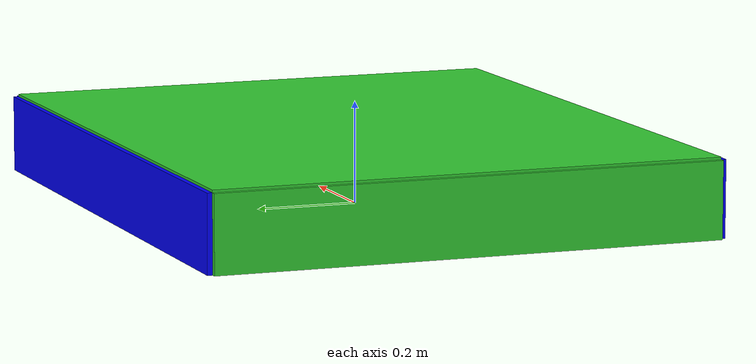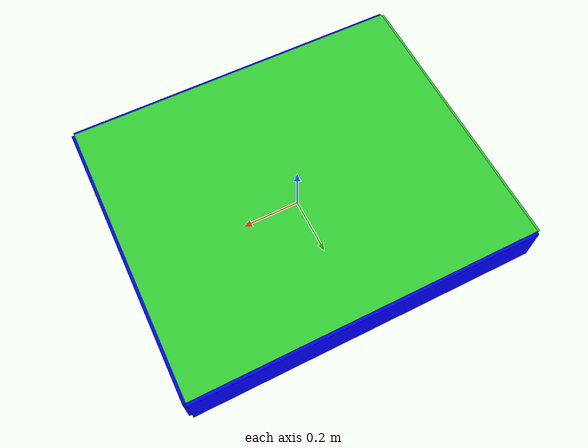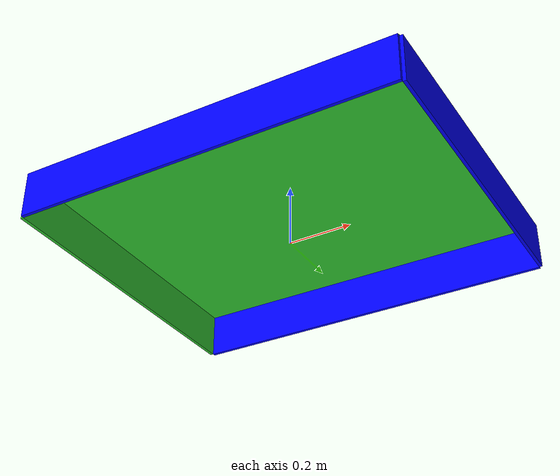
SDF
<?xml version="1.0"?>
<sdf version="1.6">
  <model name="pallet">
    <static>true</static>
    <link name="pallet_link">

      <!-- Top surface: 1200x1000mm (green) -->
      <visual name="top_surface">
        <pose>0 0 0.15 0 0 0</pose>
        <geometry>
          <box>
            <size>1.2 1.0 0.01</size>
          </box>
        </geometry>
        <material>
          <ambient>0.2 0.8 0.2 1</ambient>
          <diffuse>0.2 0.8 0.2 1</diffuse>
        </material>
      </visual>

      <!-- Front face (camera facing): 1200x150mm (blue) -->
      <!-- Located at Y = -0.5 (front side facing camera) -->
      <visual name="front_face">
        <pose>0 -0.505 0.075 0 0 0</pose>
        <geometry>
          <box>
            <size>1.2 0.01 0.15</size>
          </box>
        </geometry>
        <material>
          <ambient>0.0 0.0 1.0 1</ambient>
          <diffuse>0.0 0.0 1.0 1</diffuse>
        </material>
      </visual>

      <!-- Back face: 1200x150mm (BLUE - camera facing) -->
      <visual name="back_face">
        <pose>0 0.505 0.075 0 0 0</pose>
        <geometry>
          <box>
            <size>1.2 0.01 0.15</size>
          </box>
        </geometry>
        <material>
          <ambient>0.0 0.0 1.0 1</ambient>
          <diffuse>0.0 0.0 1.0 1</diffuse>
        </material>
      </visual>

      <!-- Left side face: 1000x150mm (green) -->
      <visual name="left_face">
        <pose>-0.605 0 0.075 0 0 0</pose>
        <geometry>
          <box>
            <size>0.01 1.0 0.15</size>
          </box>
        </geometry>
        <material>
          <ambient>0.2 0.8 0.2 1</ambient>
          <diffuse>0.2 0.8 0.2 1</diffuse>
        </material>
      </visual>

      <!-- Right side face: 1000x150mm (BLUE - camera facing) -->
      <visual name="right_face">
        <pose>0.605 0 0.075 0 0 0</pose>
        <geometry>
          <box>
            <size>0.01 1.0 0.15</size>
          </box>
        </geometry>
        <material>
          <ambient>0.0 0.0 1.0 1</ambient>
          <diffuse>0.0 0.0 1.0 1</diffuse>
        </material>
      </visual>

      <!-- Collision (full box) -->
      <collision name="pallet_collision">
        <pose>0 0 0.075 0 0 0</pose>
        <geometry>
          <box>
            <size>1.2 1.0 0.15</size>
          </box>
        </geometry>
      </collision>

    </link>
  </model>
</sdf>
